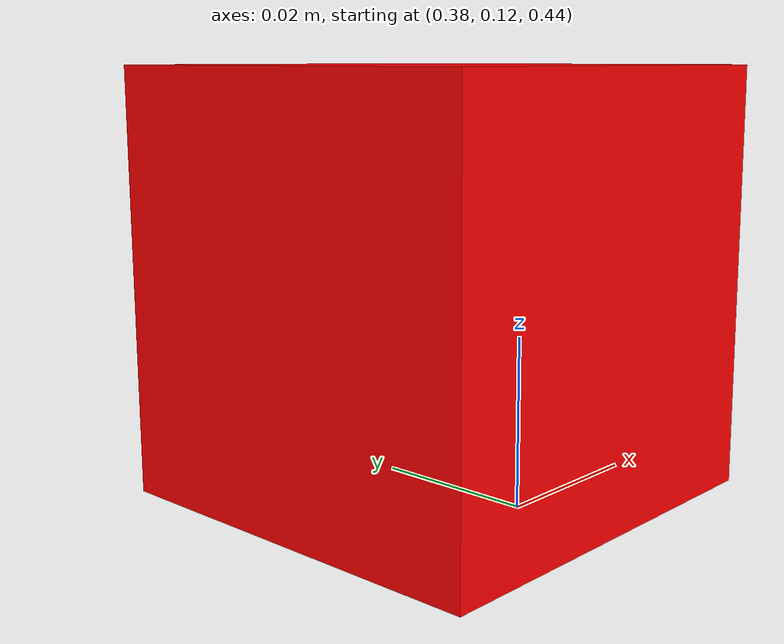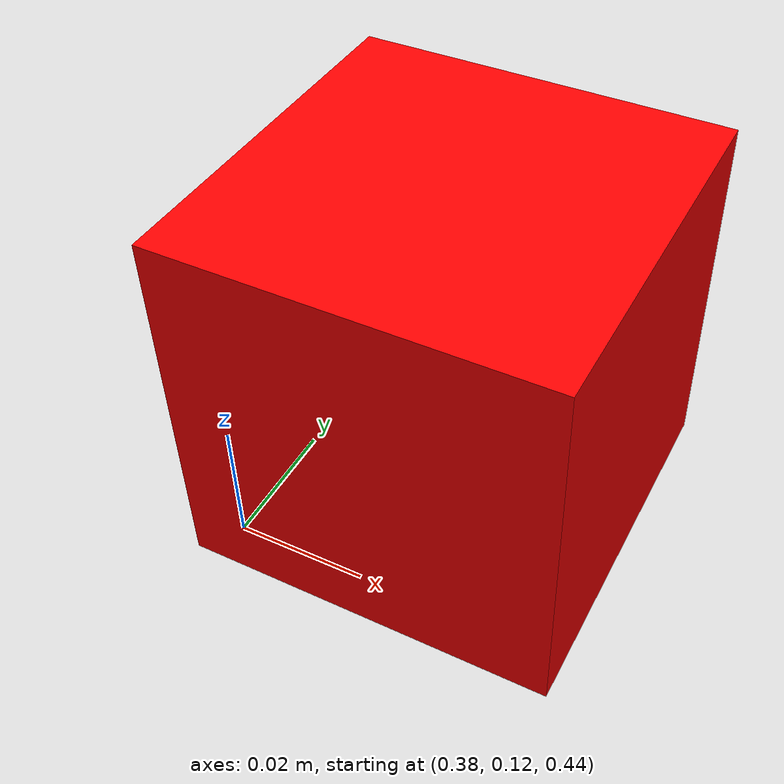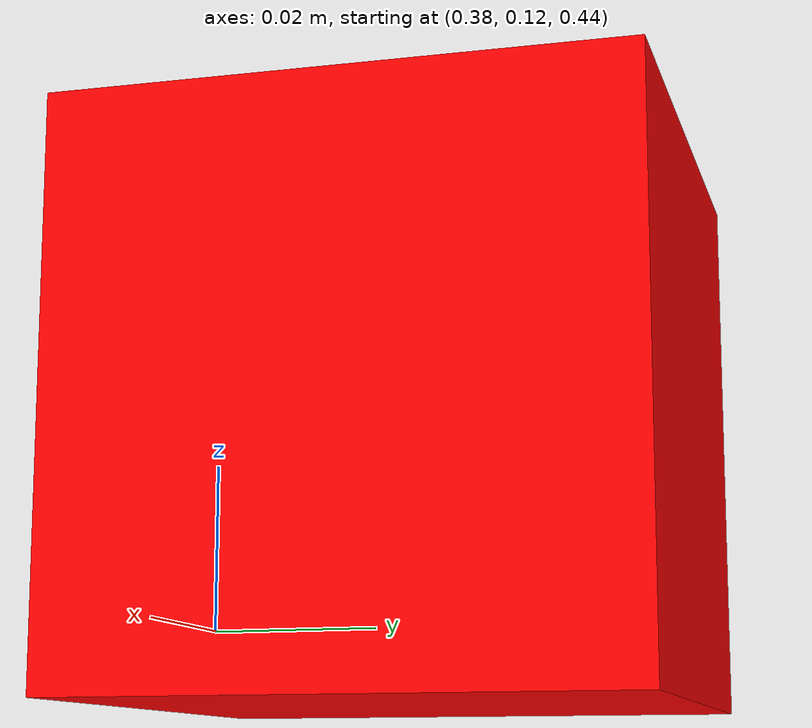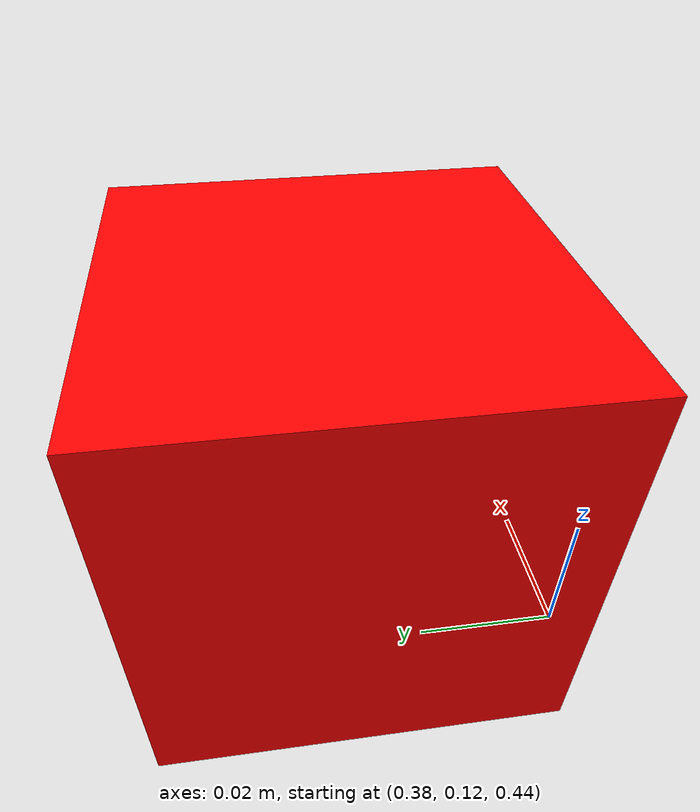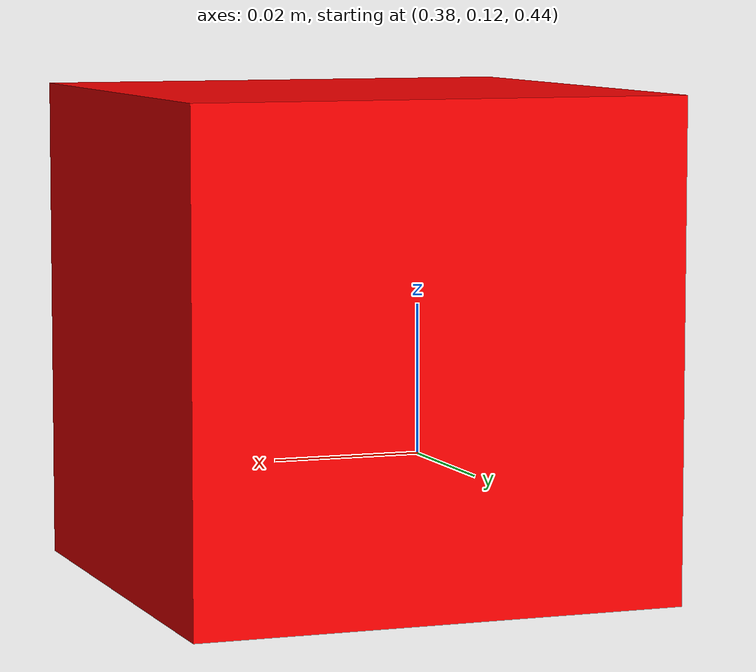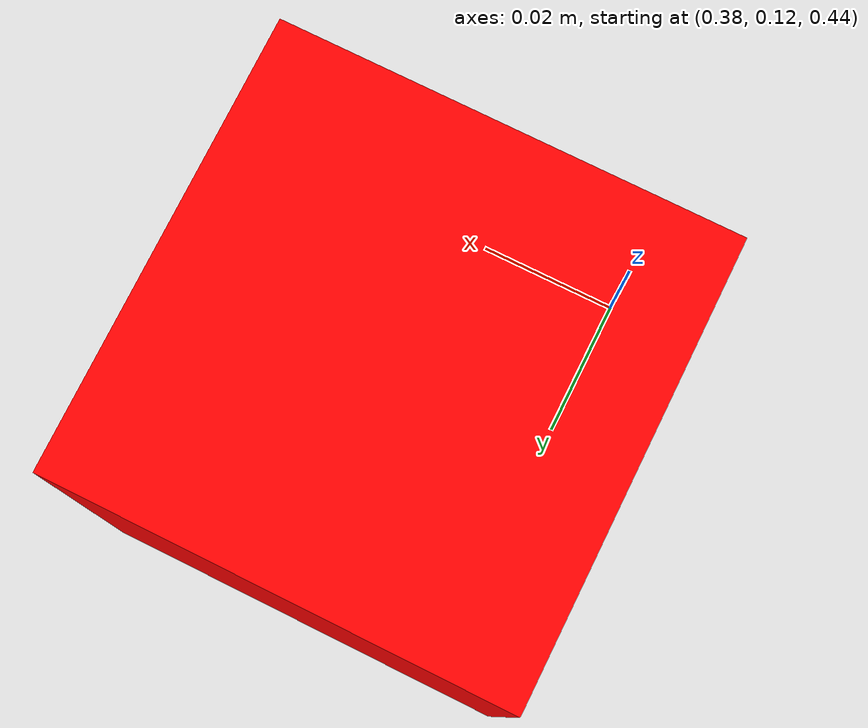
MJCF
<mujoco>
    <worldbody>
        <body name="red_block" pos="0.4 0.15 0.46">
            <joint name="red_block:joint" type="free" damping="0.1" frictionloss="0"/>
            <geom name="red_block" size="0.03 0.03 0.03" rgba="1 0 0 1" type="box" conaffinity="0" contype="0" group="1"/>
            <geom size="0.03 0.03 0.03" type="box" conaffinity="1" contype="1" condim="4" group="4" mass="0.01" friction="1 1 1" solimp="1 1 1" solref="0.00001 1"/>
            <site name="red_block" pos="0 0 0" size="0.02 0.02 0.02" rgba="1 0 0 0.5" type="sphere" />
        </body>
    </worldbody>
</mujoco>
